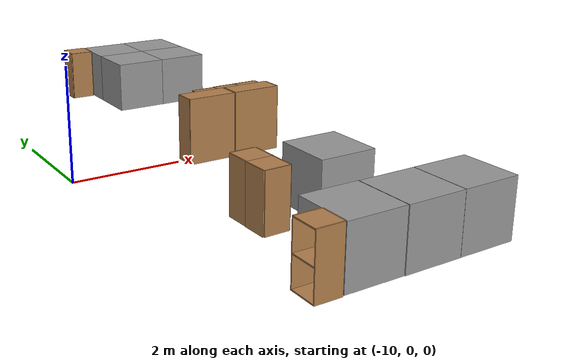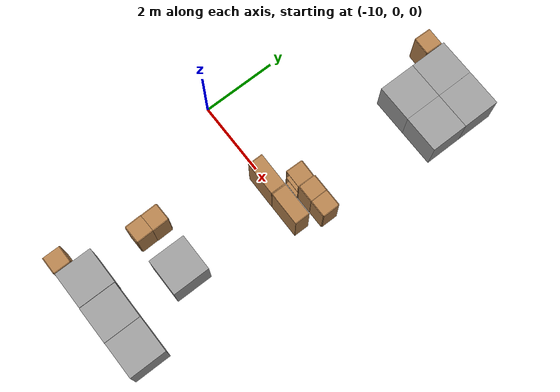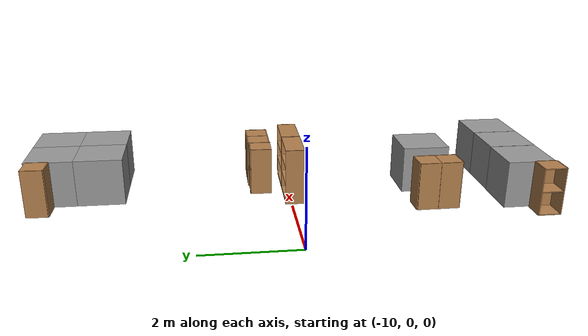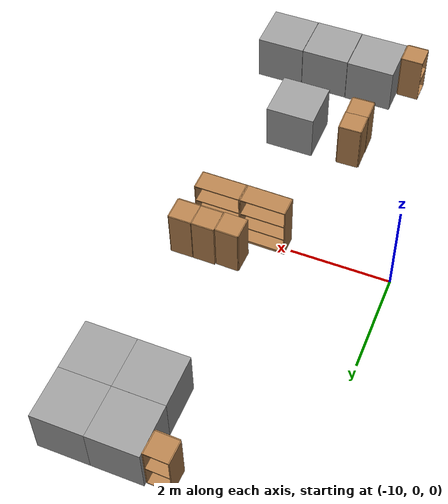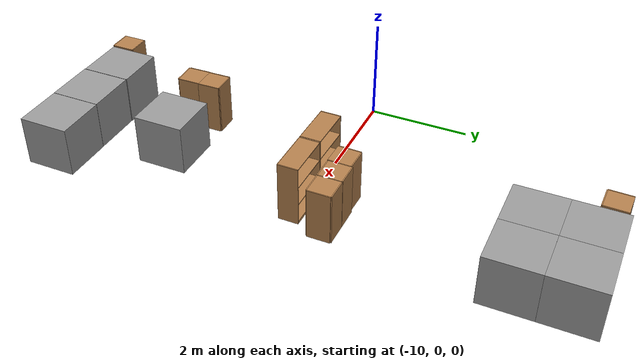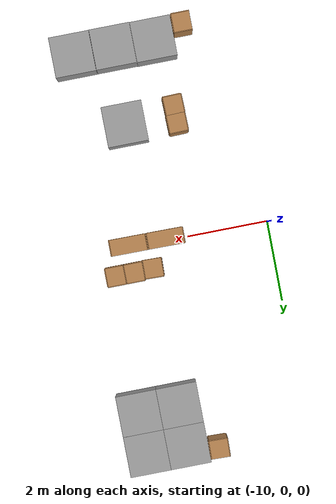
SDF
<sdf version="1.4">
 <world name="default">
  <model name="cabinet">
   <static>1</static>
   <link name="cabinet_bottom_plate">
    <inertial>
     <pose>0 0 -1 0 -0 0</pose>
     <inertia><ixx>2.05</ixx><ixy>0</ixy><ixz>0</ixz><iyy>2.05</iyy><iyz>0</iyz><izz>2.05</izz></inertia>
     <mass>25</mass>
    </inertial>
    <collision name="cabinet_bottom_plate_geom">
     <pose>0 0 0.01 0 -0 0</pose>
     <geometry><box><size>0.45 0.45 0.02</size></box></geometry>
    </collision>
    <visual name="cabinet_bottom_plate_geom_visual">
     <pose>0 0 0.01 0 -0 0</pose>
     <geometry><box><size>0.45 0.45 0.02</size></box></geometry>
     <material>
      <script><uri>file://media/materials/scripts/gazebo.material</uri><name>Gazebo/Wood</name></script>
     </material>
    </visual>
    <collision name="cabinet_bottom_plate_geom_cabinet_back_plate">
     <pose>0.235 0 0.51 0 -0 0</pose>
     <geometry><box><size>0.02 0.45 1.02</size></box></geometry>
    </collision>
    <visual name="cabinet_bottom_plate_geom_cabinet_back_plate_visual">
     <pose>0.235 0 0.51 0 -0 0</pose>
     <geometry><box><size>0.02 0.45 1.02</size></box></geometry>
     <material>
      <script><uri>file://media/materials/scripts/gazebo.material</uri><name>Gazebo/Wood</name></script>
     </material>
    </visual>
    <collision name="cabinet_bottom_plate_geom_cabinet_left_plate">
     <pose>0 0.235 0.51 0 -0 0</pose>
     <geometry><box><size>0.45 0.02 1.02</size></box></geometry>
    </collision>
    <visual name="cabinet_bottom_plate_geom_cabinet_left_plate_visual">
     <pose>0 0.235 0.51 0 -0 0</pose>
     <geometry><box><size>0.45 0.02 1.02</size></box></geometry>
     <material>
      <script><uri>file://media/materials/scripts/gazebo.material</uri><name>Gazebo/Wood</name></script>
     </material>
    </visual>
    <collision name="cabinet_bottom_plate_geom_cabinet_middle_plate">
     <pose>0 0 0.51 0 -0 0</pose>
     <geometry><box><size>0.45 0.45 0.02</size></box></geometry>
    </collision>
    <visual name="cabinet_bottom_plate_geom_cabinet_middle_plate_visual">
     <pose>0 0 0.51 0 -0 0</pose>
     <geometry><box><size>0.45 0.45 0.02</size></box></geometry>
     <material>
      <script><uri>file://media/materials/scripts/gazebo.material</uri><name>Gazebo/Wood</name></script>
     </material>
    </visual>
    <collision name="cabinet_bottom_plate_geom_cabinet_right_plate">
     <pose>0 -0.235 0.51 0 -0 0</pose>
     <geometry><box><size>0.45 0.02 1.02</size></box></geometry>
    </collision>
    <visual name="cabinet_bottom_plate_geom_cabinet_right_plate_visual">
     <pose>0 -0.235 0.51 0 -0 0</pose>
     <geometry><box><size>0.45 0.02 1.02</size></box></geometry>
     <material>
      <script><uri>file://media/materials/scripts/gazebo.material</uri><name>Gazebo/Wood</name></script>
     </material>
    </visual>
    <collision name="cabinet_bottom_plate_geom_cabinet_top_plate">
     <pose>0 0 1.01 0 -0 0</pose>
     <geometry><box><size>0.45 0.45 0.02</size></box></geometry>
    </collision>
    <visual name="cabinet_bottom_plate_geom_cabinet_top_plate_visual">
     <pose>0 0 1.01 0 -0 0</pose>
     <geometry><box><size>0.45 0.45 0.02</size></box></geometry>
     <material>
      <script><uri>file://media/materials/scripts/gazebo.material</uri><name>Gazebo/Wood</name></script>
     </material>
    </visual>
    <velocity_decay><linear>0</linear><angular>0</angular></velocity_decay>
   </link>
   <pose>-8.83739 -5.17737 0 0 -0 0</pose>
  </model>
  <model name="unit_box_1">
   <pose>-8.08426 -4.90317 0.5 0 -0 0</pose>
   <link name="link">
    <inertial>
     <mass>1</mass>
     <inertia><ixx>1</ixx><ixy>0</ixy><ixz>0</ixz><iyy>1</iyy><iyz>0</iyz><izz>1</izz></inertia>
    </inertial>
    <collision name="collision"><geometry><box><size>1 1 1</size></box></geometry></collision>
    <visual name="visual">
     <geometry><box><size>1 1 1</size></box></geometry>
     <material>
      <script><uri>file://media/materials/scripts/gazebo.material</uri><name>Gazebo/Grey</name></script>
     </material>
    </visual>
    <velocity_decay><linear>0</linear><angular>0</angular></velocity_decay>
   </link>
   <static>0</static>
  </model>
  <model name="unit_box_2_0">
   <pose>-7.07514 -4.91144 0.5 0 -0 0</pose>
   <link name="link">
    <inertial>
     <mass>1</mass>
     <inertia><ixx>1</ixx><ixy>0</ixy><ixz>0</ixz><iyy>1</iyy><iyz>0</iyz><izz>1</izz></inertia>
    </inertial>
    <collision name="collision"><geometry><box><size>1 1 1</size></box></geometry></collision>
    <visual name="visual">
     <geometry><box><size>1 1 1</size></box></geometry>
     <material>
      <script><uri>file://media/materials/scripts/gazebo.material</uri><name>Gazebo/Grey</name></script>
     </material>
    </visual>
    <velocity_decay><linear>0</linear><angular>0</angular></velocity_decay>
   </link>
   <static>0</static>
  </model>
  <model name="unit_box_3">
   <pose>-6.06883 -4.90812 0.5 0 -0 0</pose>
   <link name="link">
    <inertial>
     <mass>1</mass>
     <inertia><ixx>1</ixx><ixy>0</ixy><ixz>0</ixz><iyy>1</iyy><iyz>0</iyz><izz>1</izz></inertia>
    </inertial>
    <collision name="collision"><geometry><box><size>1 1 1</size></box></geometry></collision>
    <visual name="visual">
     <geometry><box><size>1 1 1</size></box></geometry>
     <material>
      <script><uri>file://media/materials/scripts/gazebo.material</uri><name>Gazebo/Grey</name></script>
     </material>
    </visual>
    <velocity_decay><linear>0</linear><angular>0</angular></velocity_decay>
   </link>
   <static>0</static>
  </model>
  <model name="unit_box_4_0">
   <pose>-7 -3 0.5 0 -0 0</pose>
   <link name="link">
    <inertial>
     <mass>1</mass>
     <inertia><ixx>1</ixx><ixy>0</ixy><ixz>0</ixz><iyy>1</iyy><iyz>0</iyz><izz>1</izz></inertia>
    </inertial>
    <collision name="collision"><geometry><box><size>1 1 1</size></box></geometry></collision>
    <visual name="visual">
     <geometry><box><size>1 1 1</size></box></geometry>
     <material>
      <script><uri>file://media/materials/scripts/gazebo.material</uri><name>Gazebo/Grey</name></script>
     </material>
    </visual>
    <velocity_decay><linear>0</linear><angular>0</angular></velocity_decay>
   </link>
   <static>0</static>
  </model>
  <model name="cabinet_3">
   <static>1</static>
   <link name="cabinet_bottom_plate">
    <inertial>
     <pose>0 0 -1 0 -0 0</pose>
     <inertia><ixx>2.05</ixx><ixy>0</ixy><ixz>0</ixz><iyy>2.05</iyy><iyz>0</iyz><izz>2.05</izz></inertia>
     <mass>25</mass>
    </inertial>
    <collision name="cabinet_bottom_plate_geom">
     <pose>0 0 0.01 0 -0 0</pose>
     <geometry><box><size>0.45 0.45 0.02</size></box></geometry>
    </collision>
    <visual name="cabinet_bottom_plate_geom_visual">
     <pose>0 0 0.01 0 -0 0</pose>
     <geometry><box><size>0.45 0.45 0.02</size></box></geometry>
     <material>
      <script><uri>file://media/materials/scripts/gazebo.material</uri><name>Gazebo/Wood</name></script>
     </material>
    </visual>
    <collision name="cabinet_bottom_plate_geom_cabinet_back_plate">
     <pose>0.235 0 0.51 0 -0 0</pose>
     <geometry><box><size>0.02 0.45 1.02</size></box></geometry>
    </collision>
    <visual name="cabinet_bottom_plate_geom_cabinet_back_plate_visual">
     <pose>0.235 0 0.51 0 -0 0</pose>
     <geometry><box><size>0.02 0.45 1.02</size></box></geometry>
     <material>
      <script><uri>file://media/materials/scripts/gazebo.material</uri><name>Gazebo/Wood</name></script>
     </material>
    </visual>
    <collision name="cabinet_bottom_plate_geom_cabinet_left_plate">
     <pose>0 0.235 0.51 0 -0 0</pose>
     <geometry><box><size>0.45 0.02 1.02</size></box></geometry>
    </collision>
    <visual name="cabinet_bottom_plate_geom_cabinet_left_plate_visual">
     <pose>0 0.235 0.51 0 -0 0</pose>
     <geometry><box><size>0.45 0.02 1.02</size></box></geometry>
     <material>
      <script><uri>file://media/materials/scripts/gazebo.material</uri><name>Gazebo/Wood</name></script>
     </material>
    </visual>
    <collision name="cabinet_bottom_plate_geom_cabinet_middle_plate">
     <pose>0 0 0.51 0 -0 0</pose>
     <geometry><box><size>0.45 0.45 0.02</size></box></geometry>
    </collision>
    <visual name="cabinet_bottom_plate_geom_cabinet_middle_plate_visual">
     <pose>0 0 0.51 0 -0 0</pose>
     <geometry><box><size>0.45 0.45 0.02</size></box></geometry>
     <material>
      <script><uri>file://media/materials/scripts/gazebo.material</uri><name>Gazebo/Wood</name></script>
     </material>
    </visual>
    <collision name="cabinet_bottom_plate_geom_cabinet_right_plate">
     <pose>0 -0.235 0.51 0 -0 0</pose>
     <geometry><box><size>0.45 0.02 1.02</size></box></geometry>
    </collision>
    <visual name="cabinet_bottom_plate_geom_cabinet_right_plate_visual">
     <pose>0 -0.235 0.51 0 -0 0</pose>
     <geometry><box><size>0.45 0.02 1.02</size></box></geometry>
     <material>
      <script><uri>file://media/materials/scripts/gazebo.material</uri><name>Gazebo/Wood</name></script>
     </material>
    </visual>
    <collision name="cabinet_bottom_plate_geom_cabinet_top_plate">
     <pose>0 0 1.01 0 -0 0</pose>
     <geometry><box><size>0.45 0.45 0.02</size></box></geometry>
    </collision>
    <visual name="cabinet_bottom_plate_geom_cabinet_top_plate_visual">
     <pose>0 0 1.01 0 -0 0</pose>
     <geometry><box><size>0.45 0.45 0.02</size></box></geometry>
     <material>
      <script><uri>file://media/materials/scripts/gazebo.material</uri><name>Gazebo/Wood</name></script>
     </material>
    </visual>
    <velocity_decay><linear>0</linear><angular>0</angular></velocity_decay>
   </link>
   <pose>-8.25711 -3.22617 0 0 0 -1.54762</pose>
  </model>
  <model name="cabinet_4">
   <static>1</static>
   <link name="cabinet_bottom_plate">
    <inertial>
     <pose>0 0 -1 0 -0 0</pose>
     <inertia><ixx>2.05</ixx><ixy>0</ixy><ixz>0</ixz><iyy>2.05</iyy><iyz>0</iyz><izz>2.05</izz></inertia>
     <mass>25</mass>
    </inertial>
    <collision name="cabinet_bottom_plate_geom">
     <pose>0 0 0.01 0 -0 0</pose>
     <geometry><box><size>0.45 0.45 0.02</size></box></geometry>
    </collision>
    <visual name="cabinet_bottom_plate_geom_visual">
     <pose>0 0 0.01 0 -0 0</pose>
     <geometry><box><size>0.45 0.45 0.02</size></box></geometry>
     <material>
      <script><uri>file://media/materials/scripts/gazebo.material</uri><name>Gazebo/Wood</name></script>
     </material>
    </visual>
    <collision name="cabinet_bottom_plate_geom_cabinet_back_plate">
     <pose>0.235 0 0.51 0 -0 0</pose>
     <geometry><box><size>0.02 0.45 1.02</size></box></geometry>
    </collision>
    <visual name="cabinet_bottom_plate_geom_cabinet_back_plate_visual">
     <pose>0.235 0 0.51 0 -0 0</pose>
     <geometry><box><size>0.02 0.45 1.02</size></box></geometry>
     <material>
      <script><uri>file://media/materials/scripts/gazebo.material</uri><name>Gazebo/Wood</name></script>
     </material>
    </visual>
    <collision name="cabinet_bottom_plate_geom_cabinet_left_plate">
     <pose>0 0.235 0.51 0 -0 0</pose>
     <geometry><box><size>0.45 0.02 1.02</size></box></geometry>
    </collision>
    <visual name="cabinet_bottom_plate_geom_cabinet_left_plate_visual">
     <pose>0 0.235 0.51 0 -0 0</pose>
     <geometry><box><size>0.45 0.02 1.02</size></box></geometry>
     <material>
      <script><uri>file://media/materials/scripts/gazebo.material</uri><name>Gazebo/Wood</name></script>
     </material>
    </visual>
    <collision name="cabinet_bottom_plate_geom_cabinet_middle_plate">
     <pose>0 0 0.51 0 -0 0</pose>
     <geometry><box><size>0.45 0.45 0.02</size></box></geometry>
    </collision>
    <visual name="cabinet_bottom_plate_geom_cabinet_middle_plate_visual">
     <pose>0 0 0.51 0 -0 0</pose>
     <geometry><box><size>0.45 0.45 0.02</size></box></geometry>
     <material>
      <script><uri>file://media/materials/scripts/gazebo.material</uri><name>Gazebo/Wood</name></script>
     </material>
    </visual>
    <collision name="cabinet_bottom_plate_geom_cabinet_right_plate">
     <pose>0 -0.235 0.51 0 -0 0</pose>
     <geometry><box><size>0.45 0.02 1.02</size></box></geometry>
    </collision>
    <visual name="cabinet_bottom_plate_geom_cabinet_right_plate_visual">
     <pose>0 -0.235 0.51 0 -0 0</pose>
     <geometry><box><size>0.45 0.02 1.02</size></box></geometry>
     <material>
      <script><uri>file://media/materials/scripts/gazebo.material</uri><name>Gazebo/Wood</name></script>
     </material>
    </visual>
    <collision name="cabinet_bottom_plate_geom_cabinet_top_plate">
     <pose>0 0 1.01 0 -0 0</pose>
     <geometry><box><size>0.45 0.45 0.02</size></box></geometry>
    </collision>
    <visual name="cabinet_bottom_plate_geom_cabinet_top_plate_visual">
     <pose>0 0 1.01 0 -0 0</pose>
     <geometry><box><size>0.45 0.45 0.02</size></box></geometry>
     <material>
      <script><uri>file://media/materials/scripts/gazebo.material</uri><name>Gazebo/Wood</name></script>
     </material>
    </visual>
    <velocity_decay><linear>0</linear><angular>0</angular></velocity_decay>
   </link>
   <pose>-8.25999 -2.78265 0 0 -0 1.59135</pose>
  </model>
  <model name="unit_box_6_0">
   <pose>-7 4.99999 0.5 0 0 -1e-05</pose>
   <link name="link">
    <inertial>
     <mass>1</mass>
     <inertia><ixx>1</ixx><ixy>0</ixy><ixz>0</ixz><iyy>1</iyy><iyz>0</iyz><izz>1</izz></inertia>
    </inertial>
    <collision name="collision"><geometry><box><size>1 1 1</size></box></geometry></collision>
    <visual name="visual">
     <geometry><box><size>1 1 1</size></box></geometry>
     <material>
      <script><uri>file://media/materials/scripts/gazebo.material</uri><name>Gazebo/Grey</name></script>
     </material>
    </visual>
    <velocity_decay><linear>0</linear><angular>0</angular></velocity_decay>
   </link>
   <static>0</static>
  </model>
  <model name="unit_box_7_0">
   <pose>-6 5 0.5 0 0 -1.4e-05</pose>
   <link name="link">
    <inertial>
     <mass>1</mass>
     <inertia><ixx>1</ixx><ixy>0</ixy><ixz>0</ixz><iyy>1</iyy><iyz>0</iyz><izz>1</izz></inertia>
    </inertial>
    <collision name="collision"><geometry><box><size>1 1 1</size></box></geometry></collision>
    <visual name="visual">
     <geometry><box><size>1 1 1</size></box></geometry>
     <material>
      <script><uri>file://media/materials/scripts/gazebo.material</uri><name>Gazebo/Grey</name></script>
     </material>
    </visual>
    <velocity_decay><linear>0</linear><angular>0</angular></velocity_decay>
   </link>
   <static>0</static>
  </model>
  <model name="unit_box_8">
   <pose>-7.00003 3.99994 0.5 0 0 -1.5e-05</pose>
   <link name="link">
    <inertial>
     <mass>1</mass>
     <inertia><ixx>1</ixx><ixy>0</ixy><ixz>0</ixz><iyy>1</iyy><iyz>0</iyz><izz>1</izz></inertia>
    </inertial>
    <collision name="collision"><geometry><box><size>1 1 1</size></box></geometry></collision>
    <visual name="visual">
     <geometry><box><size>1 1 1</size></box></geometry>
     <material>
      <script><uri>file://media/materials/scripts/gazebo.material</uri><name>Gazebo/Grey</name></script>
     </material>
    </visual>
    <velocity_decay><linear>0</linear><angular>0</angular></velocity_decay>
   </link>
   <static>0</static>
  </model>
  <model name="unit_box_9_0">
   <pose>-6 3.99986 0.5 0 -0 1e-06</pose>
   <link name="link">
    <inertial>
     <mass>1</mass>
     <inertia><ixx>1</ixx><ixy>0</ixy><ixz>0</ixz><iyy>1</iyy><iyz>0</iyz><izz>1</izz></inertia>
    </inertial>
    <collision name="collision"><geometry><box><size>1 1 1</size></box></geometry></collision>
    <visual name="visual">
     <geometry><box><size>1 1 1</size></box></geometry>
     <material>
      <script><uri>file://media/materials/scripts/gazebo.material</uri><name>Gazebo/Grey</name></script>
     </material>
    </visual>
    <velocity_decay><linear>0</linear><angular>0</angular></velocity_decay>
   </link>
   <static>0</static>
  </model>
  <model name="cabinet_10">
   <static>1</static>
   <link name="cabinet_bottom_plate">
    <inertial>
     <pose>0 0 -1 0 -0 0</pose>
     <inertia><ixx>2.05</ixx><ixy>0</ixy><ixz>0</ixz><iyy>2.05</iyy><iyz>0</iyz><izz>2.05</izz></inertia>
     <mass>25</mass>
    </inertial>
    <collision name="cabinet_bottom_plate_geom">
     <pose>0 0 0.01 0 -0 0</pose>
     <geometry><box><size>0.45 0.45 0.02</size></box></geometry>
    </collision>
    <visual name="cabinet_bottom_plate_geom_visual">
     <pose>0 0 0.01 0 -0 0</pose>
     <geometry><box><size>0.45 0.45 0.02</size></box></geometry>
     <material>
      <script><uri>file://media/materials/scripts/gazebo.material</uri><name>Gazebo/Wood</name></script>
     </material>
    </visual>
    <collision name="cabinet_bottom_plate_geom_cabinet_back_plate">
     <pose>0.235 0 0.51 0 -0 0</pose>
     <geometry><box><size>0.02 0.45 1.02</size></box></geometry>
    </collision>
    <visual name="cabinet_bottom_plate_geom_cabinet_back_plate_visual">
     <pose>0.235 0 0.51 0 -0 0</pose>
     <geometry><box><size>0.02 0.45 1.02</size></box></geometry>
     <material>
      <script><uri>file://media/materials/scripts/gazebo.material</uri><name>Gazebo/Wood</name></script>
     </material>
    </visual>
    <collision name="cabinet_bottom_plate_geom_cabinet_left_plate">
     <pose>0 0.235 0.51 0 -0 0</pose>
     <geometry><box><size>0.45 0.02 1.02</size></box></geometry>
    </collision>
    <visual name="cabinet_bottom_plate_geom_cabinet_left_plate_visual">
     <pose>0 0.235 0.51 0 -0 0</pose>
     <geometry><box><size>0.45 0.02 1.02</size></box></geometry>
     <material>
      <script><uri>file://media/materials/scripts/gazebo.material</uri><name>Gazebo/Wood</name></script>
     </material>
    </visual>
    <collision name="cabinet_bottom_plate_geom_cabinet_middle_plate">
     <pose>0 0 0.51 0 -0 0</pose>
     <geometry><box><size>0.45 0.45 0.02</size></box></geometry>
    </collision>
    <visual name="cabinet_bottom_plate_geom_cabinet_middle_plate_visual">
     <pose>0 0 0.51 0 -0 0</pose>
     <geometry><box><size>0.45 0.45 0.02</size></box></geometry>
     <material>
      <script><uri>file://media/materials/scripts/gazebo.material</uri><name>Gazebo/Wood</name></script>
     </material>
    </visual>
    <collision name="cabinet_bottom_plate_geom_cabinet_right_plate">
     <pose>0 -0.235 0.51 0 -0 0</pose>
     <geometry><box><size>0.45 0.02 1.02</size></box></geometry>
    </collision>
    <visual name="cabinet_bottom_plate_geom_cabinet_right_plate_visual">
     <pose>0 -0.235 0.51 0 -0 0</pose>
     <geometry><box><size>0.45 0.02 1.02</size></box></geometry>
     <material>
      <script><uri>file://media/materials/scripts/gazebo.material</uri><name>Gazebo/Wood</name></script>
     </material>
    </visual>
    <collision name="cabinet_bottom_plate_geom_cabinet_top_plate">
     <pose>0 0 1.01 0 -0 0</pose>
     <geometry><box><size>0.45 0.45 0.02</size></box></geometry>
    </collision>
    <visual name="cabinet_bottom_plate_geom_cabinet_top_plate_visual">
     <pose>0 0 1.01 0 -0 0</pose>
     <geometry><box><size>0.45 0.45 0.02</size></box></geometry>
     <material>
      <script><uri>file://media/materials/scripts/gazebo.material</uri><name>Gazebo/Wood</name></script>
     </material>
    </visual>
    <velocity_decay><linear>0</linear><angular>0</angular></velocity_decay>
   </link>
   <pose>-7.75204 5.21671 0 0 0 -1.59826</pose>
  </model>
  <model name="cabinet_11">
   <static>1</static>
   <link name="cabinet_bottom_plate">
    <inertial>
     <pose>0 0 -1 0 -0 0</pose>
     <inertia><ixx>2.05</ixx><ixy>0</ixy><ixz>0</ixz><iyy>2.05</iyy><iyz>0</iyz><izz>2.05</izz></inertia>
     <mass>25</mass>
    </inertial>
    <collision name="cabinet_bottom_plate_geom">
     <pose>0 0 0.01 0 -0 0</pose>
     <geometry><box><size>0.45 0.45 0.02</size></box></geometry>
    </collision>
    <visual name="cabinet_bottom_plate_geom_visual">
     <pose>0 0 0.01 0 -0 0</pose>
     <geometry><box><size>0.45 0.45 0.02</size></box></geometry>
     <material>
      <script><uri>file://media/materials/scripts/gazebo.material</uri><name>Gazebo/Wood</name></script>
     </material>
    </visual>
    <collision name="cabinet_bottom_plate_geom_cabinet_back_plate">
     <pose>0.235 0 0.51 0 -0 0</pose>
     <geometry><box><size>0.02 0.45 1.02</size></box></geometry>
    </collision>
    <visual name="cabinet_bottom_plate_geom_cabinet_back_plate_visual">
     <pose>0.235 0 0.51 0 -0 0</pose>
     <geometry><box><size>0.02 0.45 1.02</size></box></geometry>
     <material>
      <script><uri>file://media/materials/scripts/gazebo.material</uri><name>Gazebo/Wood</name></script>
     </material>
    </visual>
    <collision name="cabinet_bottom_plate_geom_cabinet_left_plate">
     <pose>0 0.235 0.51 0 -0 0</pose>
     <geometry><box><size>0.45 0.02 1.02</size></box></geometry>
    </collision>
    <visual name="cabinet_bottom_plate_geom_cabinet_left_plate_visual">
     <pose>0 0.235 0.51 0 -0 0</pose>
     <geometry><box><size>0.45 0.02 1.02</size></box></geometry>
     <material>
      <script><uri>file://media/materials/scripts/gazebo.material</uri><name>Gazebo/Wood</name></script>
     </material>
    </visual>
    <collision name="cabinet_bottom_plate_geom_cabinet_middle_plate">
     <pose>0 0 0.51 0 -0 0</pose>
     <geometry><box><size>0.45 0.45 0.02</size></box></geometry>
    </collision>
    <visual name="cabinet_bottom_plate_geom_cabinet_middle_plate_visual">
     <pose>0 0 0.51 0 -0 0</pose>
     <geometry><box><size>0.45 0.45 0.02</size></box></geometry>
     <material>
      <script><uri>file://media/materials/scripts/gazebo.material</uri><name>Gazebo/Wood</name></script>
     </material>
    </visual>
    <collision name="cabinet_bottom_plate_geom_cabinet_right_plate">
     <pose>0 -0.235 0.51 0 -0 0</pose>
     <geometry><box><size>0.45 0.02 1.02</size></box></geometry>
    </collision>
    <visual name="cabinet_bottom_plate_geom_cabinet_right_plate_visual">
     <pose>0 -0.235 0.51 0 -0 0</pose>
     <geometry><box><size>0.45 0.02 1.02</size></box></geometry>
     <material>
      <script><uri>file://media/materials/scripts/gazebo.material</uri><name>Gazebo/Wood</name></script>
     </material>
    </visual>
    <collision name="cabinet_bottom_plate_geom_cabinet_top_plate">
     <pose>0 0 1.01 0 -0 0</pose>
     <geometry><box><size>0.45 0.45 0.02</size></box></geometry>
    </collision>
    <visual name="cabinet_bottom_plate_geom_cabinet_top_plate_visual">
     <pose>0 0 1.01 0 -0 0</pose>
     <geometry><box><size>0.45 0.45 0.02</size></box></geometry>
     <material>
      <script><uri>file://media/materials/scripts/gazebo.material</uri><name>Gazebo/Wood</name></script>
     </material>
    </visual>
    <velocity_decay><linear>0</linear><angular>0</angular></velocity_decay>
   </link>
   <pose>-7.00922 0.585815 0 0 -0 1.54854</pose>
  </model>
  <model name="cabinet_12">
   <static>1</static>
   <link name="cabinet_bottom_plate">
    <inertial>
     <pose>0 0 -1 0 -0 0</pose>
     <inertia><ixx>2.05</ixx><ixy>0</ixy><ixz>0</ixz><iyy>2.05</iyy><iyz>0</iyz><izz>2.05</izz></inertia>
     <mass>25</mass>
    </inertial>
    <collision name="cabinet_bottom_plate_geom">
     <pose>0 0 0.01 0 -0 0</pose>
     <geometry><box><size>0.45 0.45 0.02</size></box></geometry>
    </collision>
    <visual name="cabinet_bottom_plate_geom_visual">
     <pose>0 0 0.01 0 -0 0</pose>
     <geometry><box><size>0.45 0.45 0.02</size></box></geometry>
     <material>
      <script><uri>file://media/materials/scripts/gazebo.material</uri><name>Gazebo/Wood</name></script>
     </material>
    </visual>
    <collision name="cabinet_bottom_plate_geom_cabinet_back_plate">
     <pose>0.235 0 0.51 0 -0 0</pose>
     <geometry><box><size>0.02 0.45 1.02</size></box></geometry>
    </collision>
    <visual name="cabinet_bottom_plate_geom_cabinet_back_plate_visual">
     <pose>0.235 0 0.51 0 -0 0</pose>
     <geometry><box><size>0.02 0.45 1.02</size></box></geometry>
     <material>
      <script><uri>file://media/materials/scripts/gazebo.material</uri><name>Gazebo/Wood</name></script>
     </material>
    </visual>
    <collision name="cabinet_bottom_plate_geom_cabinet_left_plate">
     <pose>0 0.235 0.51 0 -0 0</pose>
     <geometry><box><size>0.45 0.02 1.02</size></box></geometry>
    </collision>
    <visual name="cabinet_bottom_plate_geom_cabinet_left_plate_visual">
     <pose>0 0.235 0.51 0 -0 0</pose>
     <geometry><box><size>0.45 0.02 1.02</size></box></geometry>
     <material>
      <script><uri>file://media/materials/scripts/gazebo.material</uri><name>Gazebo/Wood</name></script>
     </material>
    </visual>
    <collision name="cabinet_bottom_plate_geom_cabinet_middle_plate">
     <pose>0 0 0.51 0 -0 0</pose>
     <geometry><box><size>0.45 0.45 0.02</size></box></geometry>
    </collision>
    <visual name="cabinet_bottom_plate_geom_cabinet_middle_plate_visual">
     <pose>0 0 0.51 0 -0 0</pose>
     <geometry><box><size>0.45 0.45 0.02</size></box></geometry>
     <material>
      <script><uri>file://media/materials/scripts/gazebo.material</uri><name>Gazebo/Wood</name></script>
     </material>
    </visual>
    <collision name="cabinet_bottom_plate_geom_cabinet_right_plate">
     <pose>0 -0.235 0.51 0 -0 0</pose>
     <geometry><box><size>0.45 0.02 1.02</size></box></geometry>
    </collision>
    <visual name="cabinet_bottom_plate_geom_cabinet_right_plate_visual">
     <pose>0 -0.235 0.51 0 -0 0</pose>
     <geometry><box><size>0.45 0.02 1.02</size></box></geometry>
     <material>
      <script><uri>file://media/materials/scripts/gazebo.material</uri><name>Gazebo/Wood</name></script>
     </material>
    </visual>
    <collision name="cabinet_bottom_plate_geom_cabinet_top_plate">
     <pose>0 0 1.01 0 -0 0</pose>
     <geometry><box><size>0.45 0.45 0.02</size></box></geometry>
    </collision>
    <visual name="cabinet_bottom_plate_geom_cabinet_top_plate_visual">
     <pose>0 0 1.01 0 -0 0</pose>
     <geometry><box><size>0.45 0.45 0.02</size></box></geometry>
     <material>
      <script><uri>file://media/materials/scripts/gazebo.material</uri><name>Gazebo/Wood</name></script>
     </material>
    </visual>
    <velocity_decay><linear>0</linear><angular>0</angular></velocity_decay>
   </link>
   <pose>-6.53834 0.608368 0 0 -0 0</pose>
  </model>
  <model name="cabinet_13">
   <static>1</static>
   <link name="cabinet_bottom_plate">
    <inertial>
     <pose>0 0 -1 0 -0 0</pose>
     <inertia><ixx>2.05</ixx><ixy>0</ixy><ixz>0</ixz><iyy>2.05</iyy><iyz>0</iyz><izz>2.05</izz></inertia>
     <mass>25</mass>
    </inertial>
    <collision name="cabinet_bottom_plate_geom">
     <pose>0 0 0.01 0 -0 0</pose>
     <geometry><box><size>0.45 0.45 0.02</size></box></geometry>
    </collision>
    <visual name="cabinet_bottom_plate_geom_visual">
     <pose>0 0 0.01 0 -0 0</pose>
     <geometry><box><size>0.45 0.45 0.02</size></box></geometry>
     <material>
      <script><uri>file://media/materials/scripts/gazebo.material</uri><name>Gazebo/Wood</name></script>
     </material>
    </visual>
    <collision name="cabinet_bottom_plate_geom_cabinet_back_plate">
     <pose>0.235 0 0.51 0 -0 0</pose>
     <geometry><box><size>0.02 0.45 1.02</size></box></geometry>
    </collision>
    <visual name="cabinet_bottom_plate_geom_cabinet_back_plate_visual">
     <pose>0.235 0 0.51 0 -0 0</pose>
     <geometry><box><size>0.02 0.45 1.02</size></box></geometry>
     <material>
      <script><uri>file://media/materials/scripts/gazebo.material</uri><name>Gazebo/Wood</name></script>
     </material>
    </visual>
    <collision name="cabinet_bottom_plate_geom_cabinet_left_plate">
     <pose>0 0.235 0.51 0 -0 0</pose>
     <geometry><box><size>0.45 0.02 1.02</size></box></geometry>
    </collision>
    <visual name="cabinet_bottom_plate_geom_cabinet_left_plate_visual">
     <pose>0 0.235 0.51 0 -0 0</pose>
     <geometry><box><size>0.45 0.02 1.02</size></box></geometry>
     <material>
      <script><uri>file://media/materials/scripts/gazebo.material</uri><name>Gazebo/Wood</name></script>
     </material>
    </visual>
    <collision name="cabinet_bottom_plate_geom_cabinet_middle_plate">
     <pose>0 0 0.51 0 -0 0</pose>
     <geometry><box><size>0.45 0.45 0.02</size></box></geometry>
    </collision>
    <visual name="cabinet_bottom_plate_geom_cabinet_middle_plate_visual">
     <pose>0 0 0.51 0 -0 0</pose>
     <geometry><box><size>0.45 0.45 0.02</size></box></geometry>
     <material>
      <script><uri>file://media/materials/scripts/gazebo.material</uri><name>Gazebo/Wood</name></script>
     </material>
    </visual>
    <collision name="cabinet_bottom_plate_geom_cabinet_right_plate">
     <pose>0 -0.235 0.51 0 -0 0</pose>
     <geometry><box><size>0.45 0.02 1.02</size></box></geometry>
    </collision>
    <visual name="cabinet_bottom_plate_geom_cabinet_right_plate_visual">
     <pose>0 -0.235 0.51 0 -0 0</pose>
     <geometry><box><size>0.45 0.02 1.02</size></box></geometry>
     <material>
      <script><uri>file://media/materials/scripts/gazebo.material</uri><name>Gazebo/Wood</name></script>
     </material>
    </visual>
    <collision name="cabinet_bottom_plate_geom_cabinet_top_plate">
     <pose>0 0 1.01 0 -0 0</pose>
     <geometry><box><size>0.45 0.45 0.02</size></box></geometry>
    </collision>
    <visual name="cabinet_bottom_plate_geom_cabinet_top_plate_visual">
     <pose>0 0 1.01 0 -0 0</pose>
     <geometry><box><size>0.45 0.45 0.02</size></box></geometry>
     <material>
      <script><uri>file://media/materials/scripts/gazebo.material</uri><name>Gazebo/Wood</name></script>
     </material>
    </visual>
    <velocity_decay><linear>0</linear><angular>0</angular></velocity_decay>
   </link>
   <pose>-6.07395 0.608787 0 0 -0 0</pose>
  </model>
  <model name="bookshelf_2">
   <static>1</static>
   <link name="link">
    <inertial><mass>1</mass></inertial>
    <collision name="back">
     <pose>0 0.005 0.6 0 -0 0</pose>
     <geometry><box><size>0.9 0.01 1.2</size></box></geometry>
    </collision>
    <visual name="visual1">
     <pose>0 0.005 0.6 0 -0 0</pose>
     <geometry><box><size>0.9 0.01 1.2</size></box></geometry>
     <material>
      <script><uri>file://media/materials/scripts/gazebo.material</uri><name>Gazebo/Wood</name></script>
     </material>
    </visual>
    <collision name="left_side">
     <pose>0.45 -0.195 0.6 0 -0 0</pose>
     <geometry><box><size>0.02 0.4 1.2</size></box></geometry>
    </collision>
    <visual name="visual2">
     <pose>0.45 -0.195 0.6 0 -0 0</pose>
     <geometry><box><size>0.02 0.4 1.2</size></box></geometry>
     <material>
      <script><uri>file://media/materials/scripts/gazebo.material</uri><name>Gazebo/Wood</name></script>
     </material>
    </visual>
    <collision name="right_side">
     <pose>-0.45 -0.195 0.6 0 -0 0</pose>
     <geometry><box><size>0.02 0.4 1.2</size></box></geometry>
    </collision>
    <visual name="visual3">
     <pose>-0.45 -0.195 0.6 0 -0 0</pose>
     <geometry><box><size>0.02 0.4 1.2</size></box></geometry>
     <material>
      <script><uri>file://media/materials/scripts/gazebo.material</uri><name>Gazebo/Wood</name></script>
     </material>
    </visual>
    <collision name="bottom">
     <pose>0 -0.195 0.03 0 -0 0</pose>
     <geometry><box><size>0.88 0.4 0.06</size></box></geometry>
    </collision>
    <visual name="visual4">
     <pose>0 -0.195 0.03 0 -0 0</pose>
     <geometry><box><size>0.88 0.4 0.06</size></box></geometry>
     <material>
      <script><uri>file://media/materials/scripts/gazebo.material</uri><name>Gazebo/Wood</name></script>
     </material>
    </visual>
    <collision name="top">
     <pose>0 -0.195 1.19 0 -0 0</pose>
     <geometry><box><size>0.88 0.4 0.02</size></box></geometry>
    </collision>
    <visual name="visual5">
     <pose>0 -0.195 1.19 0 -0 0</pose>
     <geometry><box><size>0.88 0.4 0.02</size></box></geometry>
     <material>
      <script><uri>file://media/materials/scripts/gazebo.material</uri><name>Gazebo/Wood</name></script>
     </material>
    </visual>
    <collision name="low_shelf">
     <pose>0 -0.195 0.43 0 -0 0</pose>
     <geometry><box><size>0.88 0.4 0.02</size></box></geometry>
    </collision>
    <visual name="visual6">
     <pose>0 -0.195 0.43 0 -0 0</pose>
     <geometry><box><size>0.88 0.4 0.02</size></box></geometry>
     <material>
      <script><uri>file://media/materials/scripts/gazebo.material</uri><name>Gazebo/Wood</name></script>
     </material>
    </visual>
    <collision name="high_shelf">
     <pose>0 -0.195 0.8 0 -0 0</pose>
     <geometry><box><size>0.88 0.4 0.02</size></box></geometry>
    </collision>
    <visual name="visual7">
     <pose>0 -0.195 0.8 0 -0 0</pose>
     <geometry><box><size>0.88 0.4 0.02</size></box></geometry>
     <material>
      <script><uri>file://media/materials/scripts/gazebo.material</uri><name>Gazebo/Wood</name></script>
     </material>
    </visual>
    <velocity_decay><linear>0</linear><angular>0</angular></velocity_decay>
   </link>
   <pose>-7.44732 -0.267912 0 0 -0 3.13201</pose>
  </model>
  <model name="bookshelf_3">
   <static>1</static>
   <link name="link">
    <inertial><mass>1</mass></inertial>
    <collision name="back">
     <pose>0 0.005 0.6 0 -0 0</pose>
     <geometry><box><size>0.9 0.01 1.2</size></box></geometry>
    </collision>
    <visual name="visual1">
     <pose>0 0.005 0.6 0 -0 0</pose>
     <geometry><box><size>0.9 0.01 1.2</size></box></geometry>
     <material>
      <script><uri>file://media/materials/scripts/gazebo.material</uri><name>Gazebo/Wood</name></script>
     </material>
    </visual>
    <collision name="left_side">
     <pose>0.45 -0.195 0.6 0 -0 0</pose>
     <geometry><box><size>0.02 0.4 1.2</size></box></geometry>
    </collision>
    <visual name="visual2">
     <pose>0.45 -0.195 0.6 0 -0 0</pose>
     <geometry><box><size>0.02 0.4 1.2</size></box></geometry>
     <material>
      <script><uri>file://media/materials/scripts/gazebo.material</uri><name>Gazebo/Wood</name></script>
     </material>
    </visual>
    <collision name="right_side">
     <pose>-0.45 -0.195 0.6 0 -0 0</pose>
     <geometry><box><size>0.02 0.4 1.2</size></box></geometry>
    </collision>
    <visual name="visual3">
     <pose>-0.45 -0.195 0.6 0 -0 0</pose>
     <geometry><box><size>0.02 0.4 1.2</size></box></geometry>
     <material>
      <script><uri>file://media/materials/scripts/gazebo.material</uri><name>Gazebo/Wood</name></script>
     </material>
    </visual>
    <collision name="bottom">
     <pose>0 -0.195 0.03 0 -0 0</pose>
     <geometry><box><size>0.88 0.4 0.06</size></box></geometry>
    </collision>
    <visual name="visual4">
     <pose>0 -0.195 0.03 0 -0 0</pose>
     <geometry><box><size>0.88 0.4 0.06</size></box></geometry>
     <material>
      <script><uri>file://media/materials/scripts/gazebo.material</uri><name>Gazebo/Wood</name></script>
     </material>
    </visual>
    <collision name="top">
     <pose>0 -0.195 1.19 0 -0 0</pose>
     <geometry><box><size>0.88 0.4 0.02</size></box></geometry>
    </collision>
    <visual name="visual5">
     <pose>0 -0.195 1.19 0 -0 0</pose>
     <geometry><box><size>0.88 0.4 0.02</size></box></geometry>
     <material>
      <script><uri>file://media/materials/scripts/gazebo.material</uri><name>Gazebo/Wood</name></script>
     </material>
    </visual>
    <collision name="low_shelf">
     <pose>0 -0.195 0.43 0 -0 0</pose>
     <geometry><box><size>0.88 0.4 0.02</size></box></geometry>
    </collision>
    <visual name="visual6">
     <pose>0 -0.195 0.43 0 -0 0</pose>
     <geometry><box><size>0.88 0.4 0.02</size></box></geometry>
     <material>
      <script><uri>file://media/materials/scripts/gazebo.material</uri><name>Gazebo/Wood</name></script>
     </material>
    </visual>
    <collision name="high_shelf">
     <pose>0 -0.195 0.8 0 -0 0</pose>
     <geometry><box><size>0.88 0.4 0.02</size></box></geometry>
    </collision>
    <visual name="visual7">
     <pose>0 -0.195 0.8 0 -0 0</pose>
     <geometry><box><size>0.88 0.4 0.02</size></box></geometry>
     <material>
      <script><uri>file://media/materials/scripts/gazebo.material</uri><name>Gazebo/Wood</name></script>
     </material>
    </visual>
    <velocity_decay><linear>0</linear><angular>0</angular></velocity_decay>
   </link>
   <pose>-6.52337 -0.273196 0 0 -0 3.13697</pose>
  </model>
 </world>
</sdf>
